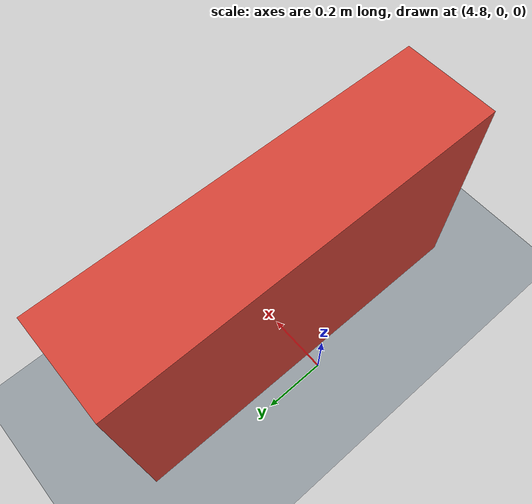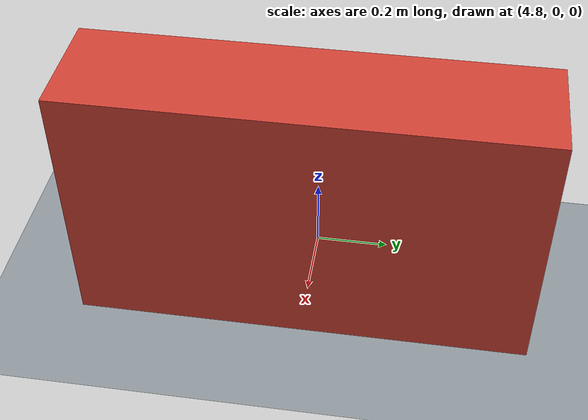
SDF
<?xml version="1.0"?>
<sdf version="1.10">
  <world name="default">
    <physics name="fast_stable" type="ignored">
      <max_step_size>0.002</max_step_size>
      <!-- Launch restores 1.0 after ros2_control activates, avoiding an unpowered drop. -->
      <real_time_factor>0.05</real_time_factor>
    </physics>
    <plugin filename="gz-sim-physics-system" name="gz::sim::systems::Physics"/>
    <plugin filename="gz-sim-user-commands-system" name="gz::sim::systems::UserCommands"/>
    <plugin filename="gz-sim-scene-broadcaster-system" name="gz::sim::systems::SceneBroadcaster"/>
    <plugin filename="gz-sim-imu-system" name="gz::sim::systems::Imu"/>
    <plugin filename="gz-sim-contact-system" name="gz::sim::systems::Contact"/>

    <scene>
      <ambient>0.7 0.7 0.7 1</ambient>
      <background>0.85 0.85 0.85 1</background>
      <shadows>true</shadows>
    </scene>

    <light type="directional" name="sun">
      <cast_shadows>true</cast_shadows>
      <pose>0 0 10 0 0 0</pose>
      <diffuse>0.9 0.9 0.9 1</diffuse>
      <specular>0.2 0.2 0.2 1</specular>
      <direction>-0.5 0.1 -0.9</direction>
    </light>

    <model name="ground_plane">
      <static>true</static>
      <link name="ground_link">
        <collision name="ground_collision">
          <geometry><plane><normal>0 0 1</normal><size>50 50</size></plane></geometry>
          <surface><friction><ode><mu>1.0</mu><mu2>1.0</mu2></ode></friction></surface>
        </collision>
        <visual name="ground_visual">
          <geometry><plane><normal>0 0 1</normal><size>50 50</size></plane></geometry>
          <material><ambient>0.45 0.48 0.50 1</ambient><diffuse>0.55 0.58 0.60 1</diffuse></material>
        </visual>
      </link>
    </model>

    <model name="test_obstacle">
      <static>true</static>
      <pose>5 0 0.35 0 0 0</pose>
      <link name="obstacle_link">
        <collision name="obstacle_collision"><geometry><box><size>0.3 1.2 0.7</size></box></geometry></collision>
        <visual name="obstacle_visual">
          <geometry><box><size>0.3 1.2 0.7</size></box></geometry>
          <material><ambient>0.6 0.2 0.15 1</ambient><diffuse>0.8 0.25 0.2 1</diffuse></material>
        </visual>
      </link>
    </model>
  </world>
</sdf>
